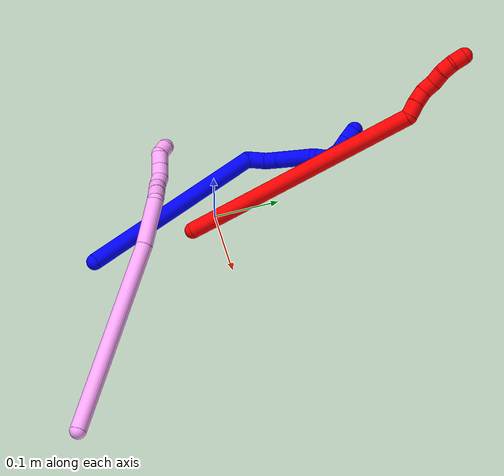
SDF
<sdf version="1.7">
 <world name="default">
  <model name="1">
   <static>0</static>
   <link name="1">
    <collision name="collision-cylinder-e_1_1_4">
     <pose>-0.057322 0.135422 -0.010485 -1.64807 -0.399344 0.43051</pose>
     <geometry><cylinder><radius>0.0125</radius><length>0.294855</length></cylinder></geometry>
     <surface>
      <friction><ode><mu>1.16</mu><mu2>1.16</mu2><slip1>0</slip1><slip2>0</slip2></ode></friction>
      <contact><ode><kp>1e+06</kp><kd>1</kd><max_vel>0</max_vel><min_depth>0.001</min_depth></ode></contact>
     </surface>
    </collision>
    <visual name="visual-cylinder-e_1_1_4">
     <pose>-0.057322 0.135422 -0.010485 -1.64807 -0.399344 0.43051</pose>
     <geometry><cylinder><radius>0.0125</radius><length>0.294855</length></cylinder></geometry>
     <material><ambient>0 0 1 1</ambient></material>
    </visual>
    <collision name="collision-cylinder-e_2_4_5">
     <pose>-0.111162 0.284147 -0.016579 -1.25201 0.243625 -0.17656</pose>
     <geometry><cylinder><radius>0.0125</radius><length>0.02887</length></cylinder></geometry>
     <surface>
      <friction><ode><mu>1.16</mu><mu2>1.16</mu2><slip1>0</slip1><slip2>0</slip2></ode></friction>
      <contact><ode><kp>1e+06</kp><kd>1</kd><max_vel>0</max_vel><min_depth>0.001</min_depth></ode></contact>
     </surface>
    </collision>
    <visual name="visual-cylinder-e_2_4_5">
     <pose>-0.111162 0.284147 -0.016579 -1.25201 0.243625 -0.17656</pose>
     <geometry><cylinder><radius>0.0125</radius><length>0.02887</length></cylinder></geometry>
     <material><ambient>0 0 1 1</ambient></material>
    </visual>
    <collision name="collision-cylinder-e_3_5_6">
     <pose>-0.106799 0.304572 -0.000535 -0.548557 0.064399 -0.018126</pose>
     <geometry><cylinder><radius>0.0125</radius><length>0.027372</length></cylinder></geometry>
     <surface>
      <friction><ode><mu>1.16</mu><mu2>1.16</mu2><slip1>0</slip1><slip2>0</slip2></ode></friction>
      <contact><ode><kp>1e+06</kp><kd>1</kd><max_vel>0</max_vel><min_depth>0.001</min_depth></ode></contact>
     </surface>
    </collision>
    <visual name="visual-cylinder-e_3_5_6">
     <pose>-0.106799 0.304572 -0.000535 -0.548557 0.064399 -0.018126</pose>
     <geometry><cylinder><radius>0.0125</radius><length>0.027372</length></cylinder></geometry>
     <material><ambient>0 0 1 1</ambient></material>
    </visual>
    <collision name="collision-cylinder-e_4_6_7">
     <pose>-0.103843 0.328982 0.039391 -0.548826 0.062552 -0.017615</pose>
     <geometry><cylinder><radius>0.0125</radius><length>0.06641</length></cylinder></geometry>
     <surface>
      <friction><ode><mu>1.16</mu><mu2>1.16</mu2><slip1>0</slip1><slip2>0</slip2></ode></friction>
      <contact><ode><kp>1e+06</kp><kd>1</kd><max_vel>0</max_vel><min_depth>0.001</min_depth></ode></contact>
     </surface>
    </collision>
    <visual name="visual-cylinder-e_4_6_7">
     <pose>-0.103843 0.328982 0.039391 -0.548826 0.062552 -0.017615</pose>
     <geometry><cylinder><radius>0.0125</radius><length>0.06641</length></cylinder></geometry>
     <material><ambient>0 0 1 1</ambient></material>
    </visual>
    <collision name="collision-cylinder-e_5_7_8">
     <pose>-0.098658 0.356031 0.070962 -1.24497 0.293077 -0.211064</pose>
     <geometry><cylinder><radius>0.0125</radius><length>0.021522</length></cylinder></geometry>
     <surface>
      <friction><ode><mu>1.16</mu><mu2>1.16</mu2><slip1>0</slip1><slip2>0</slip2></ode></friction>
      <contact><ode><kp>1e+06</kp><kd>1</kd><max_vel>0</max_vel><min_depth>0.001</min_depth></ode></contact>
     </surface>
    </collision>
    <visual name="visual-cylinder-e_5_7_8">
     <pose>-0.098658 0.356031 0.070962 -1.24497 0.293077 -0.211064</pose>
     <geometry><cylinder><radius>0.0125</radius><length>0.021522</length></cylinder></geometry>
     <material><ambient>0 0 1 1</ambient></material>
    </visual>
    <collision name="collision-cylinder-e_6_8_9">
     <pose>-0.099683 0.374528 0.077102 -1.25624 -0.422749 0.309186</pose>
     <geometry><cylinder><radius>0.0125</radius><length>0.020149</length></cylinder></geometry>
     <surface>
      <friction><ode><mu>1.16</mu><mu2>1.16</mu2><slip1>0</slip1><slip2>0</slip2></ode></friction>
      <contact><ode><kp>1e+06</kp><kd>1</kd><max_vel>0</max_vel><min_depth>0.001</min_depth></ode></contact>
     </surface>
    </collision>
    <visual name="visual-cylinder-e_6_8_9">
     <pose>-0.099683 0.374528 0.077102 -1.25624 -0.422749 0.309186</pose>
     <geometry><cylinder><radius>0.0125</radius><length>0.020149</length></cylinder></geometry>
     <material><ambient>0 0 1 1</ambient></material>
    </visual>
    <collision name="collision-cylinder-e_7_9_10">
     <pose>-0.110829 0.390524 0.079461 -1.63726 -0.767011 0.814278</pose>
     <geometry><cylinder><radius>0.0125</radius><length>0.02021</length></cylinder></geometry>
     <surface>
      <friction><ode><mu>1.16</mu><mu2>1.16</mu2><slip1>0</slip1><slip2>0</slip2></ode></friction>
      <contact><ode><kp>1e+06</kp><kd>1</kd><max_vel>0</max_vel><min_depth>0.001</min_depth></ode></contact>
     </surface>
    </collision>
    <visual name="visual-cylinder-e_7_9_10">
     <pose>-0.110829 0.390524 0.079461 -1.63726 -0.767011 0.814278</pose>
     <geometry><cylinder><radius>0.0125</radius><length>0.02021</length></cylinder></geometry>
     <material><ambient>0 0 1 1</ambient></material>
    </visual>
    <collision name="collision-cylinder-e_8_10_2">
     <pose>-0.124753 0.405428 0.079087 -1.55654 -0.734987 0.725476</pose>
     <geometry><cylinder><radius>0.0125</radius><length>0.020613</length></cylinder></geometry>
     <surface>
      <friction><ode><mu>1.16</mu><mu2>1.16</mu2><slip1>0</slip1><slip2>0</slip2></ode></friction>
      <contact><ode><kp>1e+06</kp><kd>1</kd><max_vel>0</max_vel><min_depth>0.001</min_depth></ode></contact>
     </surface>
    </collision>
    <visual name="visual-cylinder-e_8_10_2">
     <pose>-0.124753 0.405428 0.079087 -1.55654 -0.734987 0.725476</pose>
     <geometry><cylinder><radius>0.0125</radius><length>0.020613</length></cylinder></geometry>
     <material><ambient>0 0 1 1</ambient></material>
    </visual>
    <collision name="collision-sphere-2">
     <pose>-0.131664 0.413073 0.079196 0 -0 0</pose>
     <geometry><sphere><radius>0.0125</radius></sphere></geometry>
     <surface>
      <friction><ode><mu>1.16</mu><mu2>1.16</mu2><slip1>0</slip1><slip2>0</slip2></ode></friction>
      <contact><ode><kp>1e+06</kp><kd>1</kd><max_vel>0</max_vel><min_depth>0.001</min_depth></ode></contact>
     </surface>
    </collision>
    <visual name="visual-sphere-2">
     <pose>-0.131664 0.413073 0.079196 0 -0 0</pose>
     <geometry><sphere><radius>0.0125</radius></sphere></geometry>
     <material><ambient>0 0 1 1</ambient></material>
    </visual>
    <collision name="collision-sphere-10">
     <pose>-0.117842 0.397783 0.078978 0 -0 0</pose>
     <geometry><sphere><radius>0.0125</radius></sphere></geometry>
     <surface>
      <friction><ode><mu>1.16</mu><mu2>1.16</mu2><slip1>0</slip1><slip2>0</slip2></ode></friction>
      <contact><ode><kp>1e+06</kp><kd>1</kd><max_vel>0</max_vel><min_depth>0.001</min_depth></ode></contact>
     </surface>
    </collision>
    <visual name="visual-sphere-10">
     <pose>-0.117842 0.397783 0.078978 0 -0 0</pose>
     <geometry><sphere><radius>0.0125</radius></sphere></geometry>
     <material><ambient>0 0 1 1</ambient></material>
    </visual>
    <collision name="collision-sphere-9">
     <pose>-0.103816 0.383264 0.079945 0 -0 0</pose>
     <geometry><sphere><radius>0.0125</radius></sphere></geometry>
     <surface>
      <friction><ode><mu>1.16</mu><mu2>1.16</mu2><slip1>0</slip1><slip2>0</slip2></ode></friction>
      <contact><ode><kp>1e+06</kp><kd>1</kd><max_vel>0</max_vel><min_depth>0.001</min_depth></ode></contact>
     </surface>
    </collision>
    <visual name="visual-sphere-9">
     <pose>-0.103816 0.383264 0.079945 0 -0 0</pose>
     <geometry><sphere><radius>0.0125</radius></sphere></geometry>
     <material><ambient>0 0 1 1</ambient></material>
    </visual>
    <collision name="collision-sphere-4">
     <pose>-0.114644 0.270844 -0.02097 0 -0 0</pose>
     <geometry><sphere><radius>0.0125</radius></sphere></geometry>
     <surface>
      <friction><ode><mu>1.16</mu><mu2>1.16</mu2><slip1>0</slip1><slip2>0</slip2></ode></friction>
      <contact><ode><kp>1e+06</kp><kd>1</kd><max_vel>0</max_vel><min_depth>0.001</min_depth></ode></contact>
     </surface>
    </collision>
    <visual name="visual-sphere-4">
     <pose>-0.114644 0.270844 -0.02097 0 -0 0</pose>
     <geometry><sphere><radius>0.0125</radius></sphere></geometry>
     <material><ambient>0 0 1 1</ambient></material>
    </visual>
    <collision name="collision-sphere-1">
     <geometry><sphere><radius>0.0125</radius></sphere></geometry>
     <surface>
      <friction><ode><mu>1.16</mu><mu2>1.16</mu2><slip1>0</slip1><slip2>0</slip2></ode></friction>
      <contact><ode><kp>1e+06</kp><kd>1</kd><max_vel>0</max_vel><min_depth>0.001</min_depth></ode></contact>
     </surface>
    </collision>
    <visual name="visual-sphere-1">
     <geometry><sphere><radius>0.0125</radius></sphere></geometry>
     <material><ambient>0 0 1 1</ambient></material>
    </visual>
    <collision name="collision-sphere-8">
     <pose>-0.095549 0.365791 0.07426 0 -0 0</pose>
     <geometry><sphere><radius>0.0125</radius></sphere></geometry>
     <surface>
      <friction><ode><mu>1.16</mu><mu2>1.16</mu2><slip1>0</slip1><slip2>0</slip2></ode></friction>
      <contact><ode><kp>1e+06</kp><kd>1</kd><max_vel>0</max_vel><min_depth>0.001</min_depth></ode></contact>
     </surface>
    </collision>
    <visual name="visual-sphere-8">
     <pose>-0.095549 0.365791 0.07426 0 -0 0</pose>
     <geometry><sphere><radius>0.0125</radius></sphere></geometry>
     <material><ambient>0 0 1 1</ambient></material>
    </visual>
    <collision name="collision-sphere-5">
     <pose>-0.10768 0.29745 -0.012189 0 -0 0</pose>
     <geometry><sphere><radius>0.0125</radius></sphere></geometry>
     <surface>
      <friction><ode><mu>1.16</mu><mu2>1.16</mu2><slip1>0</slip1><slip2>0</slip2></ode></friction>
      <contact><ode><kp>1e+06</kp><kd>1</kd><max_vel>0</max_vel><min_depth>0.001</min_depth></ode></contact>
     </surface>
    </collision>
    <visual name="visual-sphere-5">
     <pose>-0.10768 0.29745 -0.012189 0 -0 0</pose>
     <geometry><sphere><radius>0.0125</radius></sphere></geometry>
     <material><ambient>0 0 1 1</ambient></material>
    </visual>
    <collision name="collision-sphere-6">
     <pose>-0.105918 0.311693 0.011119 0 -0 0</pose>
     <geometry><sphere><radius>0.0125</radius></sphere></geometry>
     <surface>
      <friction><ode><mu>1.16</mu><mu2>1.16</mu2><slip1>0</slip1><slip2>0</slip2></ode></friction>
      <contact><ode><kp>1e+06</kp><kd>1</kd><max_vel>0</max_vel><min_depth>0.001</min_depth></ode></contact>
     </surface>
    </collision>
    <visual name="visual-sphere-6">
     <pose>-0.105918 0.311693 0.011119 0 -0 0</pose>
     <geometry><sphere><radius>0.0125</radius></sphere></geometry>
     <material><ambient>0 0 1 1</ambient></material>
    </visual>
    <collision name="collision-sphere-7">
     <pose>-0.101767 0.346271 0.067664 0 -0 0</pose>
     <geometry><sphere><radius>0.0125</radius></sphere></geometry>
     <surface>
      <friction><ode><mu>1.16</mu><mu2>1.16</mu2><slip1>0</slip1><slip2>0</slip2></ode></friction>
      <contact><ode><kp>1e+06</kp><kd>1</kd><max_vel>0</max_vel><min_depth>0.001</min_depth></ode></contact>
     </surface>
    </collision>
    <visual name="visual-sphere-7">
     <pose>-0.101767 0.346271 0.067664 0 -0 0</pose>
     <geometry><sphere><radius>0.0125</radius></sphere></geometry>
     <material><ambient>0 0 1 1</ambient></material>
    </visual>
    <inertial>
     <pose>-0.077747 0.219551 0.010696 0 -0 0</pose>
     <mass>0.5</mass>
     <inertia>
      <ixx>0.002651</ixx>
      <ixy>0</ixy>
      <ixz>0</ixz>
      <iyy>0.001085</iyy>
      <iyz>0</iyz>
      <izz>-0.001155</izz>
     </inertia>
    </inertial>
   </link>
   <pose>0.036019 -0.195751 0.011494 -0.212114 0.605437 -0.082248</pose>
  </model>
  <model name="2">
   <static>0</static>
   <link name="2">
    <collision name="collision-cylinder-e_1_1_4">
     <pose>0.00734 0.089174 0.165847 -0.493341 0.038962 -0.009812</pose>
     <geometry><cylinder><radius>0.0125</radius><length>0.376887</length></cylinder></geometry>
     <surface>
      <friction><ode><mu>1.16</mu><mu2>1.16</mu2><slip1>0</slip1><slip2>0</slip2></ode></friction>
      <contact><ode><kp>1e+06</kp><kd>1</kd><max_vel>0</max_vel><min_depth>0.001</min_depth></ode></contact>
     </surface>
    </collision>
    <visual name="visual-cylinder-e_1_1_4">
     <pose>0.00734 0.089174 0.165847 -0.493341 0.038962 -0.009812</pose>
     <geometry><cylinder><radius>0.0125</radius><length>0.376887</length></cylinder></geometry>
     <material><ambient>1 0 0 1</ambient></material>
    </visual>
    <collision name="collision-cylinder-e_2_4_5">
     <pose>0.007195 0.182215 0.339098 -0.481405 -0.73062 0.187218</pose>
     <geometry><cylinder><radius>0.0125</radius><length>0.022434</length></cylinder></geometry>
     <surface>
      <friction><ode><mu>1.16</mu><mu2>1.16</mu2><slip1>0</slip1><slip2>0</slip2></ode></friction>
      <contact><ode><kp>1e+06</kp><kd>1</kd><max_vel>0</max_vel><min_depth>0.001</min_depth></ode></contact>
     </surface>
    </collision>
    <visual name="visual-cylinder-e_2_4_5">
     <pose>0.007195 0.182215 0.339098 -0.481405 -0.73062 0.187218</pose>
     <geometry><cylinder><radius>0.0125</radius><length>0.022434</length></cylinder></geometry>
     <material><ambient>1 0 0 1</ambient></material>
    </visual>
    <collision name="collision-cylinder-e_3_5_6">
     <pose>-0.006439 0.190559 0.353491 -0.569633 -0.63763 0.192678</pose>
     <geometry><cylinder><radius>0.0125</radius><length>0.020657</length></cylinder></geometry>
     <surface>
      <friction><ode><mu>1.16</mu><mu2>1.16</mu2><slip1>0</slip1><slip2>0</slip2></ode></friction>
      <contact><ode><kp>1e+06</kp><kd>1</kd><max_vel>0</max_vel><min_depth>0.001</min_depth></ode></contact>
     </surface>
    </collision>
    <visual name="visual-cylinder-e_3_5_6">
     <pose>-0.006439 0.190559 0.353491 -0.569633 -0.63763 0.192678</pose>
     <geometry><cylinder><radius>0.0125</radius><length>0.020657</length></cylinder></geometry>
     <material><ambient>1 0 0 1</ambient></material>
    </visual>
    <collision name="collision-cylinder-e_4_6_7">
     <pose>-0.014972 0.199538 0.369093 -0.48173 -0.240562 0.059359</pose>
     <geometry><cylinder><radius>0.0125</radius><length>0.020014</length></cylinder></geometry>
     <surface>
      <friction><ode><mu>1.16</mu><mu2>1.16</mu2><slip1>0</slip1><slip2>0</slip2></ode></friction>
      <contact><ode><kp>1e+06</kp><kd>1</kd><max_vel>0</max_vel><min_depth>0.001</min_depth></ode></contact>
     </surface>
    </collision>
    <visual name="visual-cylinder-e_4_6_7">
     <pose>-0.014972 0.199538 0.369093 -0.48173 -0.240562 0.059359</pose>
     <geometry><cylinder><radius>0.0125</radius><length>0.020014</length></cylinder></geometry>
     <material><ambient>1 0 0 1</ambient></material>
    </visual>
    <collision name="collision-cylinder-e_5_7_8">
     <pose>-0.019672 0.206099 0.387214 -0.213152 -0.233734 0.025118</pose>
     <geometry><cylinder><radius>0.0125</radius><length>0.020002</length></cylinder></geometry>
     <surface>
      <friction><ode><mu>1.16</mu><mu2>1.16</mu2><slip1>0</slip1><slip2>0</slip2></ode></friction>
      <contact><ode><kp>1e+06</kp><kd>1</kd><max_vel>0</max_vel><min_depth>0.001</min_depth></ode></contact>
     </surface>
    </collision>
    <visual name="visual-cylinder-e_5_7_8">
     <pose>-0.019672 0.206099 0.387214 -0.213152 -0.233734 0.025118</pose>
     <geometry><cylinder><radius>0.0125</radius><length>0.020002</length></cylinder></geometry>
     <material><ambient>1 0 0 1</ambient></material>
    </visual>
    <collision name="collision-cylinder-e_6_8_9">
     <pose>-0.023712 0.212126 0.405739 -0.414652 -0.173204 0.036521</pose>
     <geometry><cylinder><radius>0.0125</radius><length>0.020001</length></cylinder></geometry>
     <surface>
      <friction><ode><mu>1.16</mu><mu2>1.16</mu2><slip1>0</slip1><slip2>0</slip2></ode></friction>
      <contact><ode><kp>1e+06</kp><kd>1</kd><max_vel>0</max_vel><min_depth>0.001</min_depth></ode></contact>
     </surface>
    </collision>
    <visual name="visual-cylinder-e_6_8_9">
     <pose>-0.023712 0.212126 0.405739 -0.414652 -0.173204 0.036521</pose>
     <geometry><cylinder><radius>0.0125</radius><length>0.020001</length></cylinder></geometry>
     <material><ambient>1 0 0 1</ambient></material>
    </visual>
    <collision name="collision-cylinder-e_7_9_2">
     <pose>-0.028044 0.22291 0.421597 -0.78347 -0.263797 0.109497</pose>
     <geometry><cylinder><radius>0.0125</radius><length>0.020005</length></cylinder></geometry>
     <surface>
      <friction><ode><mu>1.16</mu><mu2>1.16</mu2><slip1>0</slip1><slip2>0</slip2></ode></friction>
      <contact><ode><kp>1e+06</kp><kd>1</kd><max_vel>0</max_vel><min_depth>0.001</min_depth></ode></contact>
     </surface>
    </collision>
    <visual name="visual-cylinder-e_7_9_2">
     <pose>-0.028044 0.22291 0.421597 -0.78347 -0.263797 0.109497</pose>
     <geometry><cylinder><radius>0.0125</radius><length>0.020005</length></cylinder></geometry>
     <material><ambient>1 0 0 1</ambient></material>
    </visual>
    <collision name="collision-sphere-2">
     <pose>-0.030652 0.229724 0.428438 0 -0 0</pose>
     <geometry><sphere><radius>0.0125</radius></sphere></geometry>
     <surface>
      <friction><ode><mu>1.16</mu><mu2>1.16</mu2><slip1>0</slip1><slip2>0</slip2></ode></friction>
      <contact><ode><kp>1e+06</kp><kd>1</kd><max_vel>0</max_vel><min_depth>0.001</min_depth></ode></contact>
     </surface>
    </collision>
    <visual name="visual-sphere-2">
     <pose>-0.030652 0.229724 0.428438 0 -0 0</pose>
     <geometry><sphere><radius>0.0125</radius></sphere></geometry>
     <material><ambient>1 0 0 1</ambient></material>
    </visual>
    <collision name="collision-sphere-9">
     <pose>-0.025436 0.216095 0.414755 0 -0 0</pose>
     <geometry><sphere><radius>0.0125</radius></sphere></geometry>
     <surface>
      <friction><ode><mu>1.16</mu><mu2>1.16</mu2><slip1>0</slip1><slip2>0</slip2></ode></friction>
      <contact><ode><kp>1e+06</kp><kd>1</kd><max_vel>0</max_vel><min_depth>0.001</min_depth></ode></contact>
     </surface>
    </collision>
    <visual name="visual-sphere-9">
     <pose>-0.025436 0.216095 0.414755 0 -0 0</pose>
     <geometry><sphere><radius>0.0125</radius></sphere></geometry>
     <material><ambient>1 0 0 1</ambient></material>
    </visual>
    <collision name="collision-sphere-4">
     <pose>0.014681 0.178347 0.331693 0 -0 0</pose>
     <geometry><sphere><radius>0.0125</radius></sphere></geometry>
     <surface>
      <friction><ode><mu>1.16</mu><mu2>1.16</mu2><slip1>0</slip1><slip2>0</slip2></ode></friction>
      <contact><ode><kp>1e+06</kp><kd>1</kd><max_vel>0</max_vel><min_depth>0.001</min_depth></ode></contact>
     </surface>
    </collision>
    <visual name="visual-sphere-4">
     <pose>0.014681 0.178347 0.331693 0 -0 0</pose>
     <geometry><sphere><radius>0.0125</radius></sphere></geometry>
     <material><ambient>1 0 0 1</ambient></material>
    </visual>
    <collision name="collision-sphere-1">
     <geometry><sphere><radius>0.0125</radius></sphere></geometry>
     <surface>
      <friction><ode><mu>1.16</mu><mu2>1.16</mu2><slip1>0</slip1><slip2>0</slip2></ode></friction>
      <contact><ode><kp>1e+06</kp><kd>1</kd><max_vel>0</max_vel><min_depth>0.001</min_depth></ode></contact>
     </surface>
    </collision>
    <visual name="visual-sphere-1">
     <geometry><sphere><radius>0.0125</radius></sphere></geometry>
     <material><ambient>1 0 0 1</ambient></material>
    </visual>
    <collision name="collision-sphere-8">
     <pose>-0.021989 0.208157 0.396723 0 -0 0</pose>
     <geometry><sphere><radius>0.0125</radius></sphere></geometry>
     <surface>
      <friction><ode><mu>1.16</mu><mu2>1.16</mu2><slip1>0</slip1><slip2>0</slip2></ode></friction>
      <contact><ode><kp>1e+06</kp><kd>1</kd><max_vel>0</max_vel><min_depth>0.001</min_depth></ode></contact>
     </surface>
    </collision>
    <visual name="visual-sphere-8">
     <pose>-0.021989 0.208157 0.396723 0 -0 0</pose>
     <geometry><sphere><radius>0.0125</radius></sphere></geometry>
     <material><ambient>1 0 0 1</ambient></material>
    </visual>
    <collision name="collision-sphere-5">
     <pose>-0.00029 0.186083 0.346502 0 -0 0</pose>
     <geometry><sphere><radius>0.0125</radius></sphere></geometry>
     <surface>
      <friction><ode><mu>1.16</mu><mu2>1.16</mu2><slip1>0</slip1><slip2>0</slip2></ode></friction>
      <contact><ode><kp>1e+06</kp><kd>1</kd><max_vel>0</max_vel><min_depth>0.001</min_depth></ode></contact>
     </surface>
    </collision>
    <visual name="visual-sphere-5">
     <pose>-0.00029 0.186083 0.346502 0 -0 0</pose>
     <geometry><sphere><radius>0.0125</radius></sphere></geometry>
     <material><ambient>1 0 0 1</ambient></material>
    </visual>
    <collision name="collision-sphere-6">
     <pose>-0.012588 0.195035 0.36048 0 -0 0</pose>
     <geometry><sphere><radius>0.0125</radius></sphere></geometry>
     <surface>
      <friction><ode><mu>1.16</mu><mu2>1.16</mu2><slip1>0</slip1><slip2>0</slip2></ode></friction>
      <contact><ode><kp>1e+06</kp><kd>1</kd><max_vel>0</max_vel><min_depth>0.001</min_depth></ode></contact>
     </surface>
    </collision>
    <visual name="visual-sphere-6">
     <pose>-0.012588 0.195035 0.36048 0 -0 0</pose>
     <geometry><sphere><radius>0.0125</radius></sphere></geometry>
     <material><ambient>1 0 0 1</ambient></material>
    </visual>
    <collision name="collision-sphere-7">
     <pose>-0.017356 0.204041 0.377706 0 -0 0</pose>
     <geometry><sphere><radius>0.0125</radius></sphere></geometry>
     <surface>
      <friction><ode><mu>1.16</mu><mu2>1.16</mu2><slip1>0</slip1><slip2>0</slip2></ode></friction>
      <contact><ode><kp>1e+06</kp><kd>1</kd><max_vel>0</max_vel><min_depth>0.001</min_depth></ode></contact>
     </surface>
    </collision>
    <visual name="visual-sphere-7">
     <pose>-0.017356 0.204041 0.377706 0 -0 0</pose>
     <geometry><sphere><radius>0.0125</radius></sphere></geometry>
     <material><ambient>1 0 0 1</ambient></material>
    </visual>
    <inertial>
     <pose>0.002133 0.116901 0.218192 0 -0 0</pose>
     <mass>0.5</mass>
     <inertia>
      <ixx>0.004435</ixx>
      <ixy>0</ixy>
      <ixz>0</ixz>
      <iyy>0.003926</iyy>
      <iyz>0</iyz>
      <izz>-0.002259</izz>
     </inertia>
    </inertial>
   </link>
   <pose>0.02202 -0.039996 0.011493 -0.542276 -0.024245 -0.036453</pose>
  </model>
  <model name="4">
   <static>0</static>
   <link name="4">
    <collision name="collision-cylinder-e_1_1_4">
     <pose>-0.122838 0.059366 -0.06466 -2.39885 -0.950341 1.84572</pose>
     <geometry><cylinder><radius>0.0125</radius><length>0.301956</length></cylinder></geometry>
     <surface>
      <friction><ode><mu>1.16</mu><mu2>1.16</mu2><slip1>0</slip1><slip2>0</slip2></ode></friction>
      <contact><ode><kp>1e+06</kp><kd>1</kd><max_vel>0</max_vel><min_depth>0.001</min_depth></ode></contact>
     </surface>
    </collision>
    <visual name="visual-cylinder-e_1_1_4">
     <pose>-0.122838 0.059366 -0.06466 -2.39885 -0.950341 1.84572</pose>
     <geometry><cylinder><radius>0.0125</radius><length>0.301956</length></cylinder></geometry>
     <material><ambient>1 0.65098 0.996078 1</ambient></material>
    </visual>
    <collision name="collision-cylinder-e_2_4_5">
     <pose>-0.275689 0.128817 -0.146981 -2.62279 -0.97524 2.21366</pose>
     <geometry><cylinder><radius>0.0125</radius><length>0.07251</length></cylinder></geometry>
     <surface>
      <friction><ode><mu>1.16</mu><mu2>1.16</mu2><slip1>0</slip1><slip2>0</slip2></ode></friction>
      <contact><ode><kp>1e+06</kp><kd>1</kd><max_vel>0</max_vel><min_depth>0.001</min_depth></ode></contact>
     </surface>
    </collision>
    <visual name="visual-cylinder-e_2_4_5">
     <pose>-0.275689 0.128817 -0.146981 -2.62279 -0.97524 2.21366</pose>
     <geometry><cylinder><radius>0.0125</radius><length>0.07251</length></cylinder></geometry>
     <material><ambient>1 0.65098 0.996078 1</ambient></material>
    </visual>
    <collision name="collision-cylinder-e_3_5_6">
     <pose>-0.309536 0.147906 -0.171444 -2.21771 -0.327499 0.640868</pose>
     <geometry><cylinder><radius>0.0125</radius><length>0.023836</length></cylinder></geometry>
     <surface>
      <friction><ode><mu>1.16</mu><mu2>1.16</mu2><slip1>0</slip1><slip2>0</slip2></ode></friction>
      <contact><ode><kp>1e+06</kp><kd>1</kd><max_vel>0</max_vel><min_depth>0.001</min_depth></ode></contact>
     </surface>
    </collision>
    <visual name="visual-cylinder-e_3_5_6">
     <pose>-0.309536 0.147906 -0.171444 -2.21771 -0.327499 0.640868</pose>
     <geometry><cylinder><radius>0.0125</radius><length>0.023836</length></cylinder></geometry>
     <material><ambient>1 0.65098 0.996078 1</ambient></material>
    </visual>
    <collision name="collision-cylinder-e_4_6_7">
     <pose>-0.315818 0.165169 -0.184183 -2.19414 -0.236255 0.454981</pose>
     <geometry><cylinder><radius>0.0125</radius><length>0.020924</length></cylinder></geometry>
     <surface>
      <friction><ode><mu>1.16</mu><mu2>1.16</mu2><slip1>0</slip1><slip2>0</slip2></ode></friction>
      <contact><ode><kp>1e+06</kp><kd>1</kd><max_vel>0</max_vel><min_depth>0.001</min_depth></ode></contact>
     </surface>
    </collision>
    <visual name="visual-cylinder-e_4_6_7">
     <pose>-0.315818 0.165169 -0.184183 -2.19414 -0.236255 0.454981</pose>
     <geometry><cylinder><radius>0.0125</radius><length>0.020924</length></cylinder></geometry>
     <material><ambient>1 0.65098 0.996078 1</ambient></material>
    </visual>
    <collision name="collision-cylinder-e_5_7_8">
     <pose>-0.323134 0.180646 -0.195274 -2.19074 -0.501943 0.924092</pose>
     <geometry><cylinder><radius>0.0125</radius><length>0.020234</length></cylinder></geometry>
     <surface>
      <friction><ode><mu>1.16</mu><mu2>1.16</mu2><slip1>0</slip1><slip2>0</slip2></ode></friction>
      <contact><ode><kp>1e+06</kp><kd>1</kd><max_vel>0</max_vel><min_depth>0.001</min_depth></ode></contact>
     </surface>
    </collision>
    <visual name="visual-cylinder-e_5_7_8">
     <pose>-0.323134 0.180646 -0.195274 -2.19074 -0.501943 0.924092</pose>
     <geometry><cylinder><radius>0.0125</radius><length>0.020234</length></cylinder></geometry>
     <material><ambient>1 0.65098 0.996078 1</ambient></material>
    </visual>
    <collision name="collision-cylinder-e_6_8_9">
     <pose>-0.334605 0.190918 -0.207438 -2.73087 -0.712214 2.12063</pose>
     <geometry><cylinder><radius>0.0125</radius><length>0.020207</length></cylinder></geometry>
     <surface>
      <friction><ode><mu>1.16</mu><mu2>1.16</mu2><slip1>0</slip1><slip2>0</slip2></ode></friction>
      <contact><ode><kp>1e+06</kp><kd>1</kd><max_vel>0</max_vel><min_depth>0.001</min_depth></ode></contact>
     </surface>
    </collision>
    <visual name="visual-cylinder-e_6_8_9">
     <pose>-0.334605 0.190918 -0.207438 -2.73087 -0.712214 2.12063</pose>
     <geometry><cylinder><radius>0.0125</radius><length>0.020207</length></cylinder></geometry>
     <material><ambient>1 0.65098 0.996078 1</ambient></material>
    </visual>
    <collision name="collision-cylinder-e_7_9_10">
     <pose>-0.347812 0.196917 -0.221492 -2.74551 -0.713292 2.15349</pose>
     <geometry><cylinder><radius>0.0125</radius><length>0.020187</length></cylinder></geometry>
     <surface>
      <friction><ode><mu>1.16</mu><mu2>1.16</mu2><slip1>0</slip1><slip2>0</slip2></ode></friction>
      <contact><ode><kp>1e+06</kp><kd>1</kd><max_vel>0</max_vel><min_depth>0.001</min_depth></ode></contact>
     </surface>
    </collision>
    <visual name="visual-cylinder-e_7_9_10">
     <pose>-0.347812 0.196917 -0.221492 -2.74551 -0.713292 2.15349</pose>
     <geometry><cylinder><radius>0.0125</radius><length>0.020187</length></cylinder></geometry>
     <material><ambient>1 0.65098 0.996078 1</ambient></material>
    </visual>
    <collision name="collision-cylinder-e_8_10_2">
     <pose>-0.360151 0.207618 -0.231433 -1.92857 -0.605682 0.846351</pose>
     <geometry><cylinder><radius>0.0125</radius><length>0.020146</length></cylinder></geometry>
     <surface>
      <friction><ode><mu>1.16</mu><mu2>1.16</mu2><slip1>0</slip1><slip2>0</slip2></ode></friction>
      <contact><ode><kp>1e+06</kp><kd>1</kd><max_vel>0</max_vel><min_depth>0.001</min_depth></ode></contact>
     </surface>
    </collision>
    <visual name="visual-cylinder-e_8_10_2">
     <pose>-0.360151 0.207618 -0.231433 -1.92857 -0.605682 0.846351</pose>
     <geometry><cylinder><radius>0.0125</radius><length>0.020146</length></cylinder></geometry>
     <material><ambient>1 0.65098 0.996078 1</ambient></material>
    </visual>
    <collision name="collision-sphere-2">
     <pose>-0.365886 0.215375 -0.234333 0 -0 0</pose>
     <geometry><sphere><radius>0.0125</radius></sphere></geometry>
     <surface>
      <friction><ode><mu>1.16</mu><mu2>1.16</mu2><slip1>0</slip1><slip2>0</slip2></ode></friction>
      <contact><ode><kp>1e+06</kp><kd>1</kd><max_vel>0</max_vel><min_depth>0.001</min_depth></ode></contact>
     </surface>
    </collision>
    <visual name="visual-sphere-2">
     <pose>-0.365886 0.215375 -0.234333 0 -0 0</pose>
     <geometry><sphere><radius>0.0125</radius></sphere></geometry>
     <material><ambient>1 0.65098 0.996078 1</ambient></material>
    </visual>
    <collision name="collision-sphere-10">
     <pose>-0.354416 0.199861 -0.228533 0 -0 0</pose>
     <geometry><sphere><radius>0.0125</radius></sphere></geometry>
     <surface>
      <friction><ode><mu>1.16</mu><mu2>1.16</mu2><slip1>0</slip1><slip2>0</slip2></ode></friction>
      <contact><ode><kp>1e+06</kp><kd>1</kd><max_vel>0</max_vel><min_depth>0.001</min_depth></ode></contact>
     </surface>
    </collision>
    <visual name="visual-sphere-10">
     <pose>-0.354416 0.199861 -0.228533 0 -0 0</pose>
     <geometry><sphere><radius>0.0125</radius></sphere></geometry>
     <material><ambient>1 0.65098 0.996078 1</ambient></material>
    </visual>
    <collision name="collision-sphere-9">
     <pose>-0.341208 0.193972 -0.21445 0 -0 0</pose>
     <geometry><sphere><radius>0.0125</radius></sphere></geometry>
     <surface>
      <friction><ode><mu>1.16</mu><mu2>1.16</mu2><slip1>0</slip1><slip2>0</slip2></ode></friction>
      <contact><ode><kp>1e+06</kp><kd>1</kd><max_vel>0</max_vel><min_depth>0.001</min_depth></ode></contact>
     </surface>
    </collision>
    <visual name="visual-sphere-9">
     <pose>-0.341208 0.193972 -0.21445 0 -0 0</pose>
     <geometry><sphere><radius>0.0125</radius></sphere></geometry>
     <material><ambient>1 0.65098 0.996078 1</ambient></material>
    </visual>
    <collision name="collision-sphere-4">
     <pose>-0.245676 0.118733 -0.129319 0 -0 0</pose>
     <geometry><sphere><radius>0.0125</radius></sphere></geometry>
     <surface>
      <friction><ode><mu>1.16</mu><mu2>1.16</mu2><slip1>0</slip1><slip2>0</slip2></ode></friction>
      <contact><ode><kp>1e+06</kp><kd>1</kd><max_vel>0</max_vel><min_depth>0.001</min_depth></ode></contact>
     </surface>
    </collision>
    <visual name="visual-sphere-4">
     <pose>-0.245676 0.118733 -0.129319 0 -0 0</pose>
     <geometry><sphere><radius>0.0125</radius></sphere></geometry>
     <material><ambient>1 0.65098 0.996078 1</ambient></material>
    </visual>
    <collision name="collision-sphere-1">
     <geometry><sphere><radius>0.0125</radius></sphere></geometry>
     <surface>
      <friction><ode><mu>1.16</mu><mu2>1.16</mu2><slip1>0</slip1><slip2>0</slip2></ode></friction>
      <contact><ode><kp>1e+06</kp><kd>1</kd><max_vel>0</max_vel><min_depth>0.001</min_depth></ode></contact>
     </surface>
    </collision>
    <visual name="visual-sphere-1">
     <geometry><sphere><radius>0.0125</radius></sphere></geometry>
     <material><ambient>1 0.65098 0.996078 1</ambient></material>
    </visual>
    <collision name="collision-sphere-8">
     <pose>-0.328002 0.187865 -0.200427 0 -0 0</pose>
     <geometry><sphere><radius>0.0125</radius></sphere></geometry>
     <surface>
      <friction><ode><mu>1.16</mu><mu2>1.16</mu2><slip1>0</slip1><slip2>0</slip2></ode></friction>
      <contact><ode><kp>1e+06</kp><kd>1</kd><max_vel>0</max_vel><min_depth>0.001</min_depth></ode></contact>
     </surface>
    </collision>
    <visual name="visual-sphere-8">
     <pose>-0.328002 0.187865 -0.200427 0 -0 0</pose>
     <geometry><sphere><radius>0.0125</radius></sphere></geometry>
     <material><ambient>1 0.65098 0.996078 1</ambient></material>
    </visual>
    <collision name="collision-sphere-5">
     <pose>-0.305702 0.138902 -0.164643 0 -0 0</pose>
     <geometry><sphere><radius>0.0125</radius></sphere></geometry>
     <surface>
      <friction><ode><mu>1.16</mu><mu2>1.16</mu2><slip1>0</slip1><slip2>0</slip2></ode></friction>
      <contact><ode><kp>1e+06</kp><kd>1</kd><max_vel>0</max_vel><min_depth>0.001</min_depth></ode></contact>
     </surface>
    </collision>
    <visual name="visual-sphere-5">
     <pose>-0.305702 0.138902 -0.164643 0 -0 0</pose>
     <geometry><sphere><radius>0.0125</radius></sphere></geometry>
     <material><ambient>1 0.65098 0.996078 1</ambient></material>
    </visual>
    <collision name="collision-sphere-6">
     <pose>-0.313369 0.156911 -0.178246 0 -0 0</pose>
     <geometry><sphere><radius>0.0125</radius></sphere></geometry>
     <surface>
      <friction><ode><mu>1.16</mu><mu2>1.16</mu2><slip1>0</slip1><slip2>0</slip2></ode></friction>
      <contact><ode><kp>1e+06</kp><kd>1</kd><max_vel>0</max_vel><min_depth>0.001</min_depth></ode></contact>
     </surface>
    </collision>
    <visual name="visual-sphere-6">
     <pose>-0.313369 0.156911 -0.178246 0 -0 0</pose>
     <geometry><sphere><radius>0.0125</radius></sphere></geometry>
     <material><ambient>1 0.65098 0.996078 1</ambient></material>
    </visual>
    <collision name="collision-sphere-7">
     <pose>-0.318267 0.173428 -0.190121 0 -0 0</pose>
     <geometry><sphere><radius>0.0125</radius></sphere></geometry>
     <surface>
      <friction><ode><mu>1.16</mu><mu2>1.16</mu2><slip1>0</slip1><slip2>0</slip2></ode></friction>
      <contact><ode><kp>1e+06</kp><kd>1</kd><max_vel>0</max_vel><min_depth>0.001</min_depth></ode></contact>
     </surface>
    </collision>
    <visual name="visual-sphere-7">
     <pose>-0.318267 0.173428 -0.190121 0 -0 0</pose>
     <geometry><sphere><radius>0.0125</radius></sphere></geometry>
     <material><ambient>1 0.65098 0.996078 1</ambient></material>
    </visual>
    <inertial>
     <pose>-0.197289 0.099838 -0.110798 0 -0 0</pose>
     <mass>0.5</mass>
     <inertia>
      <ixx>0.000911</ixx>
      <ixy>0</ixy>
      <ixz>0</ixz>
      <iyy>0.003041</iyy>
      <iyz>0</iyz>
      <izz>0.000969</izz>
     </inertia>
    </inertial>
   </link>
   <pose>0.309759 -0.288501 0.012463 -1.60497 0.616443 -1.04776</pose>
  </model>
 </world>
</sdf>
